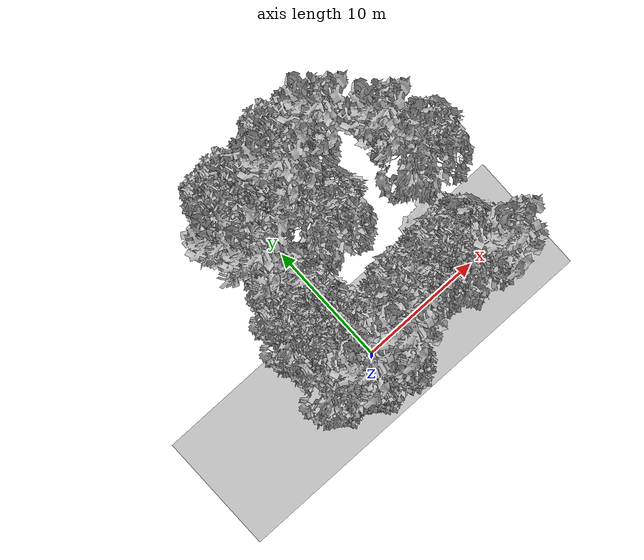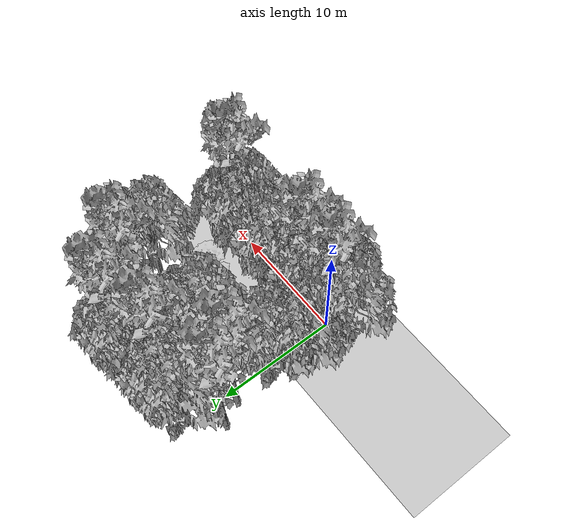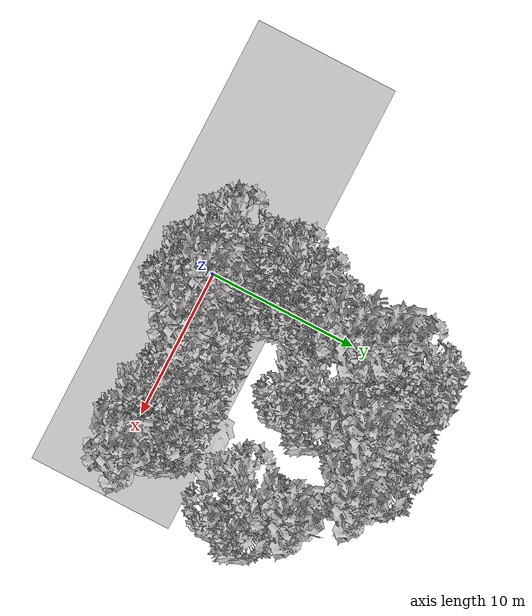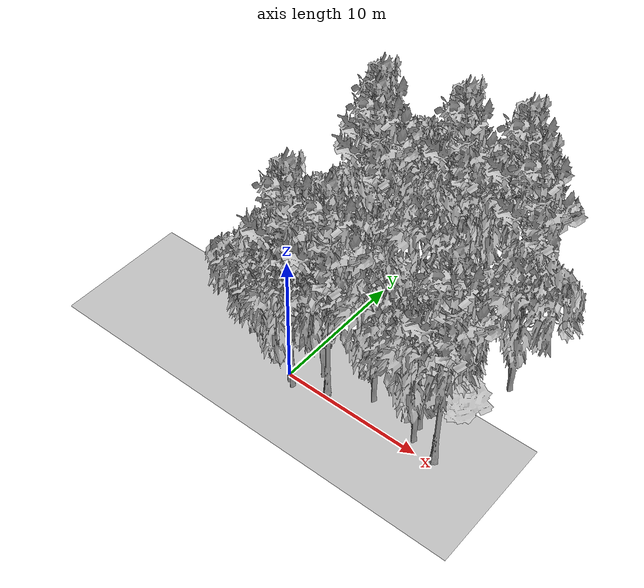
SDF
<sdf version="1.7">
 <world name="default">
  <model name="ground_plane">
   <static>1</static>
   <link name="link">
    <collision name="collision">
     <pose>-50 0 0 0 -0 0</pose>
     <geometry><plane><normal>0 0 1</normal><size>100 100</size></plane></geometry>
     <surface><contact><ode><min_depth>0.01</min_depth><max_vel>0</max_vel></ode></contact></surface>
    </collision>
    <visual name="grass">
     <cast_shadows>0</cast_shadows>
     <geometry>
      <mesh>
       <scale>0.5814285714285714 0.18142857142857144 0.1</scale>
       <uri>file://grass_plane/meshes/grass_plane.dae</uri>
      </mesh>
     </geometry>
    </visual>
   </link>
  </model>
  <model name="Tree 6">
   <static>1</static>
   <pose>5.395262094365876 1.7470312528658738 0 1.57079 -0 0</pose>
   <link name="link">
    <collision name="collision">
     <geometry><mesh><scale>3.5 5 3.5</scale><uri>model://tree_2/meshes/tree_2.obj</uri></mesh></geometry>
    </collision>
    <visual name="visual">
     <geometry><mesh><scale>3.5 5 3.5</scale><uri>model://tree_2/meshes/tree_2.obj</uri></mesh></geometry>
    </visual>
   </link>
  </model>
  <model name="Tree 27">
   <static>1</static>
   <pose>-2.034383786363911 0.4205439793284995 0 1.57079 -0 0</pose>
   <link name="link">
    <collision name="collision">
     <geometry><mesh><scale>3.5 5 3.5</scale><uri>model://tree_2/meshes/tree_2.obj</uri></mesh></geometry>
    </collision>
    <visual name="visual">
     <geometry><mesh><scale>3.5 5 3.5</scale><uri>model://tree_2/meshes/tree_2.obj</uri></mesh></geometry>
    </visual>
   </link>
  </model>
  <model name="Tree 39">
   <static>1</static>
   <pose>-0.16340453287491385 0.3203288540258953 0 1.57079 -0 0</pose>
   <link name="link">
    <collision name="collision">
     <geometry><mesh><scale>3.5 5 3.5</scale><uri>model://tree_9/meshes/tree_9.obj</uri></mesh></geometry>
    </collision>
    <visual name="visual">
     <geometry><mesh><scale>3.5 5 3.5</scale><uri>model://tree_9/meshes/tree_9.obj</uri></mesh></geometry>
    </visual>
   </link>
  </model>
  <model name="Tree 64">
   <static>1</static>
   <pose>4.59431582282695 8.518184912507614 0 1.57079 -0 0</pose>
   <link name="link">
    <collision name="collision">
     <geometry><mesh><scale>4 2.5 4</scale><uri>model://tree_1/meshes/tree_1.obj</uri></mesh></geometry>
    </collision>
    <visual name="visual">
     <geometry><mesh><scale>4 2.5 4</scale><uri>model://tree_1/meshes/tree_1.obj</uri></mesh></geometry>
    </visual>
   </link>
  </model>
  <model name="Tree 78">
   <static>1</static>
   <pose>3.8481951249199824 8.781640937320205 0 1.57079 -0 0</pose>
   <link name="link">
    <collision name="collision">
     <geometry><mesh><scale>3.5 5 3.5</scale><uri>model://tree_2/meshes/tree_2.obj</uri></mesh></geometry>
    </collision>
    <visual name="visual">
     <geometry><mesh><scale>3.5 5 3.5</scale><uri>model://tree_2/meshes/tree_2.obj</uri></mesh></geometry>
    </visual>
   </link>
  </model>
  <model name="Tree 82">
   <static>1</static>
   <pose>10.09311361776171 10.743697854941676 0 1.57079 -0 0</pose>
   <link name="link">
    <collision name="collision">
     <geometry><mesh><scale>3.5 5 3.5</scale><uri>model://tree_9/meshes/tree_9.obj</uri></mesh></geometry>
    </collision>
    <visual name="visual">
     <geometry><mesh><scale>3.5 5 3.5</scale><uri>model://tree_9/meshes/tree_9.obj</uri></mesh></geometry>
    </visual>
   </link>
  </model>
  <model name="Tree 100">
   <static>1</static>
   <pose>-0.9446715450455159 6.507319348263653 0 1.57079 -0 0</pose>
   <link name="link">
    <collision name="collision">
     <geometry><mesh><scale>3.5 5 3.5</scale><uri>model://tree_2/meshes/tree_2.obj</uri></mesh></geometry>
    </collision>
    <visual name="visual">
     <geometry><mesh><scale>3.5 5 3.5</scale><uri>model://tree_2/meshes/tree_2.obj</uri></mesh></geometry>
    </visual>
   </link>
  </model>
  <model name="Tree 103">
   <static>1</static>
   <pose>5.509208831778295 14.187820304037416 0 1.57079 -0 0</pose>
   <link name="link">
    <collision name="collision">
     <geometry><mesh><scale>3.5 5 3.5</scale><uri>model://tree_2/meshes/tree_2.obj</uri></mesh></geometry>
    </collision>
    <visual name="visual">
     <geometry><mesh><scale>3.5 5 3.5</scale><uri>model://tree_2/meshes/tree_2.obj</uri></mesh></geometry>
    </visual>
   </link>
  </model>
  <model name="Tree 119">
   <static>1</static>
   <pose>1.4167093341750032 13.772814906580862 0 1.57079 -0 0</pose>
   <link name="link">
    <collision name="collision">
     <geometry><mesh><scale>3.5 5 3.5</scale><uri>model://tree_2/meshes/tree_2.obj</uri></mesh></geometry>
    </collision>
    <visual name="visual">
     <geometry><mesh><scale>3.5 5 3.5</scale><uri>model://tree_2/meshes/tree_2.obj</uri></mesh></geometry>
    </visual>
   </link>
  </model>
  <model name="Tree 123">
   <static>1</static>
   <pose>-1.6933411976029618 11.26106063939168 0 1.57079 -0 0</pose>
   <link name="link">
    <collision name="collision">
     <geometry><mesh><scale>3.5 5 3.5</scale><uri>model://tree_9/meshes/tree_9.obj</uri></mesh></geometry>
    </collision>
    <visual name="visual">
     <geometry><mesh><scale>3.5 5 3.5</scale><uri>model://tree_9/meshes/tree_9.obj</uri></mesh></geometry>
    </visual>
   </link>
  </model>
  <model name="Tree 127">
   <static>1</static>
   <pose>11.22910025381126 0.27817923473581985 0 1.57079 -0 0</pose>
   <link name="link">
    <collision name="collision">
     <geometry><mesh><scale>3.5 5 3.5</scale><uri>model://tree_9/meshes/tree_9.obj</uri></mesh></geometry>
    </collision>
    <visual name="visual">
     <geometry><mesh><scale>3.5 5 3.5</scale><uri>model://tree_9/meshes/tree_9.obj</uri></mesh></geometry>
    </visual>
   </link>
  </model>
  <model name="Tree 148">
   <static>1</static>
   <pose>-0.7135168159950211 9.486704016232345 0 1.57079 -0 0</pose>
   <link name="link">
    <collision name="collision">
     <geometry><mesh><scale>3.5 5 3.5</scale><uri>model://tree_9/meshes/tree_9.obj</uri></mesh></geometry>
    </collision>
    <visual name="visual">
     <geometry><mesh><scale>3.5 5 3.5</scale><uri>model://tree_9/meshes/tree_9.obj</uri></mesh></geometry>
    </visual>
   </link>
  </model>
  <model name="Tree 161">
   <static>1</static>
   <pose>2.910968427068255 0.2856962792246289 0 1.57079 -0 0</pose>
   <link name="link">
    <collision name="collision">
     <geometry><mesh><scale>3.5 5 3.5</scale><uri>model://tree_9/meshes/tree_9.obj</uri></mesh></geometry>
    </collision>
    <visual name="visual">
     <geometry><mesh><scale>3.5 5 3.5</scale><uri>model://tree_9/meshes/tree_9.obj</uri></mesh></geometry>
    </visual>
   </link>
  </model>
  <model name="Tree 162">
   <static>1</static>
   <pose>7.577398023436501 13.521437495282576 0 1.57079 -0 0</pose>
   <link name="link">
    <collision name="collision">
     <geometry><mesh><scale>3.5 5 3.5</scale><uri>model://tree_9/meshes/tree_9.obj</uri></mesh></geometry>
    </collision>
    <visual name="visual">
     <geometry><mesh><scale>3.5 5 3.5</scale><uri>model://tree_9/meshes/tree_9.obj</uri></mesh></geometry>
    </visual>
   </link>
  </model>
  <model name="Tree 173">
   <static>1</static>
   <pose>11.584623337868592 7.9845413331781 0 1.57079 -0 0</pose>
   <link name="link">
    <collision name="collision">
     <geometry><mesh><scale>3.5 5 3.5</scale><uri>model://tree_2/meshes/tree_2.obj</uri></mesh></geometry>
    </collision>
    <visual name="visual">
     <geometry><mesh><scale>3.5 5 3.5</scale><uri>model://tree_2/meshes/tree_2.obj</uri></mesh></geometry>
    </visual>
   </link>
  </model>
  <model name="Tree 178">
   <static>1</static>
   <pose>3.27178451525198 12.734718003591915 0 1.57079 -0 0</pose>
   <link name="link">
    <collision name="collision">
     <geometry><mesh><scale>3.5 5 3.5</scale><uri>model://tree_2/meshes/tree_2.obj</uri></mesh></geometry>
    </collision>
    <visual name="visual">
     <geometry><mesh><scale>3.5 5 3.5</scale><uri>model://tree_2/meshes/tree_2.obj</uri></mesh></geometry>
    </visual>
   </link>
  </model>
  <model name="Tree 179">
   <static>1</static>
   <pose>9.237985075044193 0.765275628003053 0 1.57079 -0 0</pose>
   <link name="link">
    <collision name="collision">
     <geometry><mesh><scale>3.5 5 3.5</scale><uri>model://tree_2/meshes/tree_2.obj</uri></mesh></geometry>
    </collision>
    <visual name="visual">
     <geometry><mesh><scale>3.5 5 3.5</scale><uri>model://tree_2/meshes/tree_2.obj</uri></mesh></geometry>
    </visual>
   </link>
  </model>
  <model name="Tree 187">
   <static>1</static>
   <pose>-1.2456092005528774 3.463358835891203 0 1.57079 -0 0</pose>
   <link name="link">
    <collision name="collision">
     <geometry><mesh><scale>3.5 5 3.5</scale><uri>model://tree_2/meshes/tree_2.obj</uri></mesh></geometry>
    </collision>
    <visual name="visual">
     <geometry><mesh><scale>3.5 5 3.5</scale><uri>model://tree_2/meshes/tree_2.obj</uri></mesh></geometry>
    </visual>
   </link>
  </model>
  <model name="Tree 223">
   <static>1</static>
   <pose>1.6197661856011507 1.3389794777155082 0 1.57079 -0 0</pose>
   <link name="link">
    <collision name="collision">
     <geometry><mesh><scale>3.5 5 3.5</scale><uri>model://tree_2/meshes/tree_2.obj</uri></mesh></geometry>
    </collision>
    <visual name="visual">
     <geometry><mesh><scale>3.5 5 3.5</scale><uri>model://tree_2/meshes/tree_2.obj</uri></mesh></geometry>
    </visual>
   </link>
  </model>
  <model name="Tree 225">
   <static>1</static>
   <pose>-1.6519017952863138 4.691200745052729 0 1.57079 -0 0</pose>
   <link name="link">
    <collision name="collision">
     <geometry><mesh><scale>3.5 5 3.5</scale><uri>model://tree_2/meshes/tree_2.obj</uri></mesh></geometry>
    </collision>
    <visual name="visual">
     <geometry><mesh><scale>3.5 5 3.5</scale><uri>model://tree_2/meshes/tree_2.obj</uri></mesh></geometry>
    </visual>
   </link>
  </model>
  <model name="Tree 226">
   <static>1</static>
   <pose>9.799169592572326 4.247621175482902 0 1.57079 -0 0</pose>
   <link name="link">
    <collision name="collision">
     <geometry><mesh><scale>3 2 3</scale><uri>model://tree_3/meshes/tree_3.obj</uri></mesh></geometry>
    </collision>
    <visual name="visual">
     <geometry><mesh><scale>3 2 3</scale><uri>model://tree_3/meshes/tree_3.obj</uri></mesh></geometry>
    </visual>
   </link>
  </model>
  <model name="Tree 238">
   <static>1</static>
   <pose>0.6321508080008371 -0.6022545058103308 0 1.57079 -0 0</pose>
   <link name="link">
    <collision name="collision">
     <geometry><mesh><scale>3.5 5 3.5</scale><uri>model://tree_2/meshes/tree_2.obj</uri></mesh></geometry>
    </collision>
    <visual name="visual">
     <geometry><mesh><scale>3.5 5 3.5</scale><uri>model://tree_2/meshes/tree_2.obj</uri></mesh></geometry>
    </visual>
   </link>
  </model>
  <model name="Tree 244">
   <static>1</static>
   <pose>0.22025410563144732 -0.3620470281331336 0 1.57079 -0 0</pose>
   <link name="link">
    <collision name="collision">
     <geometry><mesh><scale>3.5 5 3.5</scale><uri>model://tree_2/meshes/tree_2.obj</uri></mesh></geometry>
    </collision>
    <visual name="visual">
     <geometry><mesh><scale>3.5 5 3.5</scale><uri>model://tree_2/meshes/tree_2.obj</uri></mesh></geometry>
    </visual>
   </link>
  </model>
  <model name="Tree 258">
   <static>1</static>
   <pose>3.65553008741945 12.63925770726662 0 1.57079 -0 0</pose>
   <link name="link">
    <collision name="collision">
     <geometry><mesh><scale>3.5 5 3.5</scale><uri>model://tree_9/meshes/tree_9.obj</uri></mesh></geometry>
    </collision>
    <visual name="visual">
     <geometry><mesh><scale>3.5 5 3.5</scale><uri>model://tree_9/meshes/tree_9.obj</uri></mesh></geometry>
    </visual>
   </link>
  </model>
  <model name="Tree 292">
   <static>1</static>
   <pose>8.948465165092053 1.7880875719151277 0 1.57079 -0 0</pose>
   <link name="link">
    <collision name="collision">
     <geometry><mesh><scale>3.5 5 3.5</scale><uri>model://tree_2/meshes/tree_2.obj</uri></mesh></geometry>
    </collision>
    <visual name="visual">
     <geometry><mesh><scale>3.5 5 3.5</scale><uri>model://tree_2/meshes/tree_2.obj</uri></mesh></geometry>
    </visual>
   </link>
  </model>
  <model name="Tree 293">
   <static>1</static>
   <pose>-0.08110053156310215 13.584246698817996 0 1.57079 -0 0</pose>
   <link name="link">
    <collision name="collision">
     <geometry><mesh><scale>3.5 5 3.5</scale><uri>model://tree_2/meshes/tree_2.obj</uri></mesh></geometry>
    </collision>
    <visual name="visual">
     <geometry><mesh><scale>3.5 5 3.5</scale><uri>model://tree_2/meshes/tree_2.obj</uri></mesh></geometry>
    </visual>
   </link>
  </model>
 </world>
</sdf>
